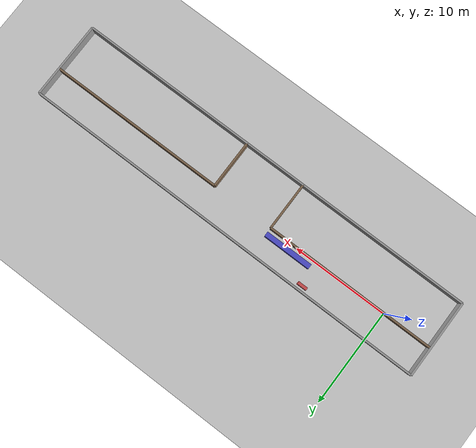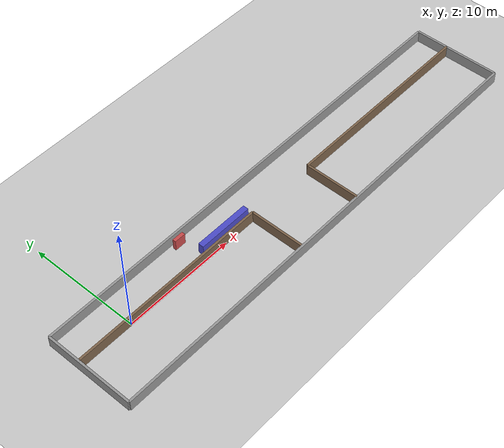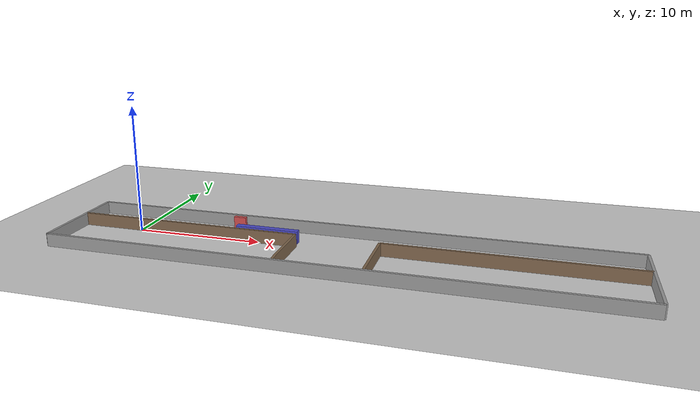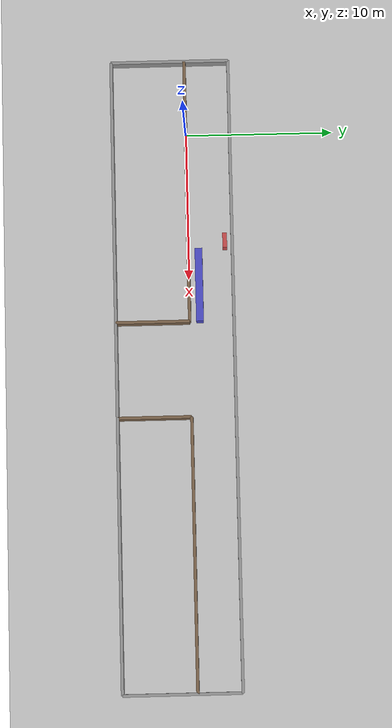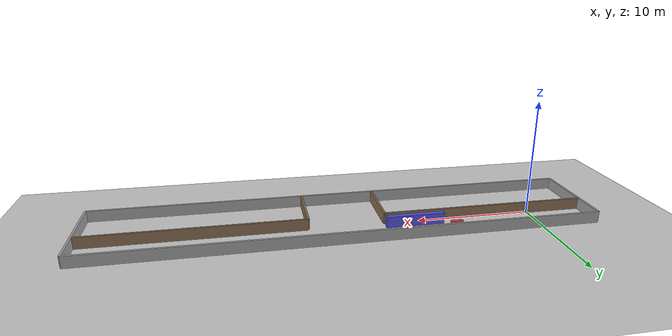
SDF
<?xml version="1.0" ?>
<sdf version="1.9">
  <world name="default">
    <plugin filename="gz-sim-physics-system" name="gz::sim::systems::Physics"/>
    <plugin filename="gz-sim-user-commands-system" name="gz::sim::systems::UserCommands"/>
    <plugin filename="gz-sim-scene-broadcaster-system" name="gz::sim::systems::SceneBroadcaster"/>
    <plugin filename="gz-sim-sensors-system" name="gz::sim::systems::Sensors">
      <render_engine>ogre2</render_engine>
    </plugin>

    <!-- Ground plane -->
    <model name="ground_plane">
      <static>true</static>
      <link name="link">
        <collision name="collision">
          <geometry><plane><normal>0 0 1</normal><size>100 100</size></plane></geometry>
        </collision>
        <visual name="visual">
          <geometry><plane><normal>0 0 1</normal><size>100 100</size></plane></geometry>
          <material><ambient>0.8 0.8 0.8 1</ambient></material>
        </visual>
      </link>
    </model>

    <!-- Sun -->
    <light type="directional" name="sun">
      <cast_shadows>true</cast_shadows>
      <pose>0 0 10 0 0 0</pose>
      <diffuse>1 1 1 1</diffuse>
      <specular>0.5 0.5 0.5 1</specular>
      <direction>-0.5 0.1 -0.9</direction>
    </light>

    <!-- Map bounds: x=-5 to 38, y=-5 to 3 (86x16 pixels, 0.5m resolution, origin at -5,-5) -->

    <!-- OUTER WALLS -->
    <!-- Bottom wall (y=-5) -->
    <model name="wall_south">
      <static>true</static>
      <pose>16.5 -5 0.5 0 0 0</pose>
      <link name="link">
        <collision name="collision"><geometry><box><size>43 0.2 1</size></box></geometry></collision>
        <visual name="visual"><geometry><box><size>43 0.2 1</size></box></geometry>
          <material><ambient>0.6 0.6 0.6 1</ambient></material></visual>
      </link>
    </model>

    <!-- Top wall (y=3) -->
    <model name="wall_north">
      <static>true</static>
      <pose>16.5 3 0.5 0 0 0</pose>
      <link name="link">
        <collision name="collision"><geometry><box><size>43 0.2 1</size></box></geometry></collision>
        <visual name="visual"><geometry><box><size>43 0.2 1</size></box></geometry>
          <material><ambient>0.6 0.6 0.6 1</ambient></material></visual>
      </link>
    </model>

    <!-- Left wall (x=-5) -->
    <model name="wall_west">
      <static>true</static>
      <pose>-5 -1 0.5 0 0 0</pose>
      <link name="link">
        <collision name="collision"><geometry><box><size>0.2 8 1</size></box></geometry></collision>
        <visual name="visual"><geometry><box><size>0.2 8 1</size></box></geometry>
          <material><ambient>0.6 0.6 0.6 1</ambient></material></visual>
      </link>
    </model>

    <!-- Right wall (x=38) -->
    <model name="wall_east">
      <static>true</static>
      <pose>38 -1 0.5 0 0 0</pose>
      <link name="link">
        <collision name="collision"><geometry><box><size>0.2 8 1</size></box></geometry></collision>
        <visual name="visual"><geometry><box><size>0.2 8 1</size></box></geometry>
          <material><ambient>0.6 0.6 0.6 1</ambient></material></visual>
      </link>
    </model>

    <!-- HORIZONTAL DIVIDER at y=0 (with corridor gap at x=13 to x=19.5) -->
    <!-- Left section: x=-5 to x=13 -->
    <model name="divider_left">
      <static>true</static>
      <pose>4 0 0.5 0 0 0</pose>
      <link name="link">
        <collision name="collision"><geometry><box><size>18 0.2 1</size></box></geometry></collision>
        <visual name="visual"><geometry><box><size>18 0.2 1</size></box></geometry>
          <material><ambient>0.5 0.4 0.3 1</ambient></material></visual>
      </link>
    </model>

    <!-- Right section: x=19.5 to x=38 -->
    <model name="divider_right">
      <static>true</static>
      <pose>28.75 0 0.5 0 0 0</pose>
      <link name="link">
        <collision name="collision"><geometry><box><size>18.5 0.2 1</size></box></geometry></collision>
        <visual name="visual"><geometry><box><size>18.5 0.2 1</size></box></geometry>
          <material><ambient>0.5 0.4 0.3 1</ambient></material></visual>
      </link>
    </model>

    <!-- CORRIDOR WALLS (vertical walls forming the corridor) -->
    <!-- Left corridor wall at x=13 -->
    <model name="corridor_west">
      <static>true</static>
      <pose>13 -2.5 0.5 0 0 0</pose>
      <link name="link">
        <collision name="collision"><geometry><box><size>0.2 5 1</size></box></geometry></collision>
        <visual name="visual"><geometry><box><size>0.2 5 1</size></box></geometry>
          <material><ambient>0.5 0.4 0.3 1</ambient></material></visual>
      </link>
    </model>

    <!-- Right corridor wall at x=19.5 -->
    <model name="corridor_east">
      <static>true</static>
      <pose>19.5 -2.5 0.5 0 0 0</pose>
      <link name="link">
        <collision name="collision"><geometry><box><size>0.2 5 1</size></box></geometry></collision>
        <visual name="visual"><geometry><box><size>0.2 5 1</size></box></geometry>
          <material><ambient>0.5 0.4 0.3 1</ambient></material></visual>
      </link>
    </model>

    <!-- OBSTACLES in upper room matching map obstacles at y=2.5 -->
    <!-- Obstacle at x=7-8 -->
    <model name="obs1">
      <static>true</static>
      <pose>7.5 2.5 0.5 0 0 0</pose>
      <link name="link">
        <collision name="collision"><geometry><box><size>1 0.3 1</size></box></geometry></collision>
        <visual name="visual"><geometry><box><size>1 0.3 1</size></box></geometry>
          <material><ambient>0.8 0.3 0.3 1</ambient></material></visual>
      </link>
    </model>

    <!-- Obstacle block around x=8-13 at y=0.5 -->
    <model name="obs2">
      <static>true</static>
      <pose>10.5 0.7 0.5 0 0 0</pose>
      <link name="link">
        <collision name="collision"><geometry><box><size>5 0.5 1</size></box></geometry></collision>
        <visual name="visual"><geometry><box><size>5 0.5 1</size></box></geometry>
          <material><ambient>0.3 0.3 0.8 1</ambient></material></visual>
      </link>
    </model>

  </world>
</sdf>
